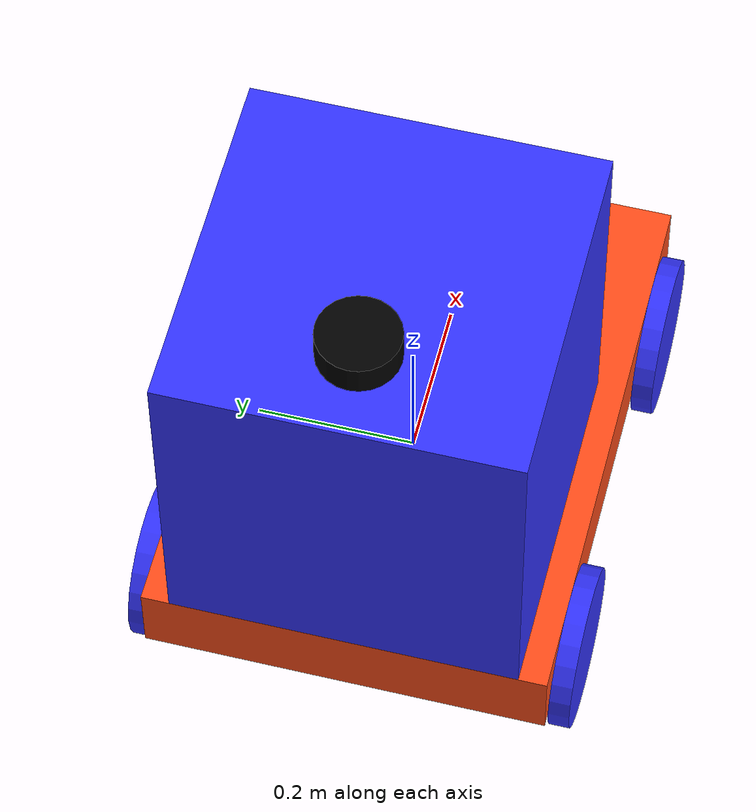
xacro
<?xml version="1.0"?>
<robot xmlns:xacro="http://www.ros.org/wiki/xacro"  name="robot">

    <xacro:include filename="robot_core.xacro" />

    <xacro:include filename="ros2_control.xacro"/>
    <xacro:include filename="lidar.xacro"/>
    <xacro:include filename="camera.xacro"/>

</robot>

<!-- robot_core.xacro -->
<robot xmlns:xacro="http://www.ros.org/wiki/xacro" >

    <xacro:include filename="inertial_macros.xacro"/>

    <!-- Chassis properties -->
    <xacro:property name="chassis_length" value="0.70"/>
    <xacro:property name="chassis_width" value="0.50"/>
    <xacro:property name="chassis_height" value="0.10"/>
    <xacro:property name="chassis_mass" value="1.0"/>

    <!-- Storage properties -->
    <xacro:property name="storage_length" value="0.43"/>
    <xacro:property name="storage_width" value="0.43"/>
    <xacro:property name="storage_height" value="0.47"/>
    <xacro:property name="storage_mass" value="1.0"/>

    <!-- Wheel properties -->
    <xacro:property name="wheel_radius" value="0.1"/>
    <xacro:property name="wheel_thickness" value="0.026"/>
    <xacro:property name="wheel_mass" value="0.05"/>
    <xacro:property name="wheel_offset_x" value="${chassis_length/3}"/>
    <xacro:property name="wheel_offset_y" value="${chassis_width/2+0.013}"/>
    <xacro:property name="wheel_offset_z" value="0"/>

    <material name="white">
        <color rgba="1 1 1 1" />
    </material>

    <material name="orange">
        <color rgba="1 0.3 0.1 1"/>
    </material>

    <material name="blue">
        <color rgba="0.2 0.2 1 1"/>
    </material>

    <material name="black">
        <color rgba="0 0 0 1"/>
    </material>

    <material name="red">
        <color rgba="1 0 0 1"/>
    </material>

    <!-- BASE LINK -->

    <link name="base_link">

    </link>

    <!-- BASE_FOOTPRINT LINK -->

    <joint name="base_footprint_joint" type="fixed">
        <parent link="base_link"/>
        <child link="base_footprint"/>
        <origin xyz="0 0 0" rpy="0 0 0"/>
    </joint>

    <link name="base_footprint">
    </link>

    <!-- CHASSIS LINK -->

    <joint name="chassis_joint" type="fixed">
        <parent link="base_link"/>
        <child link="chassis"/>
        <origin xyz="${-chassis_length/2} 0 0"/>
    </joint>

    <link name="chassis">
        <visual>
            <origin xyz="${chassis_length/2} 0 ${chassis_height/2}"/>
            <geometry>
                <box size="${chassis_length} ${chassis_width} ${chassis_height}"/>
            </geometry>
            <material name="orange"/>
        </visual>
        <collision>
            <origin xyz="${chassis_length/2} 0 ${chassis_height/2}"/>
            <geometry>
                <box size="${chassis_length} ${chassis_width} ${chassis_height}"/>
            </geometry>
        </collision>
        <xacro:inertial_box mass="0.5" x="${chassis_length}" y="${chassis_width}" z="${chassis_height}">
            <origin xyz="${chassis_length/2} 0 ${chassis_height/2}" rpy="0 0 0"/>
        </xacro:inertial_box>
    </link>

    <gazebo reference="chassis">
        <material>Gazebo/Orange</material>
    </gazebo>

    <!-- STORAGE BOX LINK -->
    <joint name="storage_box_joint" type="fixed">
        <parent link="chassis"/>
        <child link="storage_box"/>
        <origin xyz="0 0 0"/>
    </joint>

    <link name="storage_box">
        <visual>
            <origin xyz="${storage_length/2} 0 ${storage_height/2+chassis_height}"/>
            <geometry>
                <box size="${storage_length} ${storage_width} ${storage_height}"/>
            </geometry>
            <material name="blue"/>
        </visual>
        <collision>
            <origin xyz="${storage_length/2} 0 ${storage_height/2}"/>
            <geometry>
                <box size="${storage_length} ${storage_width} ${storage_height}"/>
            </geometry>
        </collision>
        <xacro:inertial_box mass="0.5" x="${storage_length}" y="${storage_width}" z="${storage_height}">
            <origin xyz="${storage_length/2} 0 ${storage_height/2}" rpy="0 0 0"/>
        </xacro:inertial_box>
    </link>

    <gazebo reference="storage_box">
        <material>Gazebo/Blue</material>
    </gazebo>

    <!-- LEFT REAR WHEEL LINK -->

    <joint name="left_rear_wheel_joint" type="continuous">
        <parent link="base_link"/>
        <child link="left_rear_wheel"/>
        <origin xyz="${-wheel_offset_x} ${wheel_offset_y} 0" rpy="-${pi/2} 0 0" />
        <axis xyz="0 0 1"/>
    </joint>

    <link name="left_rear_wheel">
        <visual>
            <geometry>
                <cylinder radius="${wheel_radius}" length="${wheel_thickness}"/>
            </geometry>
            <material name="blue"/>
        </visual>
        <collision>
            <geometry>
                <sphere radius="${wheel_radius}"/>
            </geometry>
        </collision>
        <xacro:inertial_cylinder mass="${wheel_mass}" length="${wheel_thickness}" radius="${wheel_radius}">
            <origin xyz="0 0 0" rpy="0 0 0"/>
        </xacro:inertial_cylinder>
    </link>

    <gazebo reference="left_rear_wheel">
        <material>Gazebo/Blue</material>
    </gazebo>

    <!-- LEFT FRONT WHEEL LINK -->
    <!-- make type="continuous" for real diff drive -->

    <joint name="left_front_wheel_joint" type="fixed">
        <parent link="base_link"/>
        <child link="left_front_wheel"/>
        <origin xyz="${wheel_offset_x} ${wheel_offset_y} 0" rpy="-${pi/2} 0 0" />
        <axis xyz="0 0 1"/>
    </joint>

    <link name="left_front_wheel">
        <visual>
            <geometry>
                <cylinder radius="${wheel_radius}" length="${wheel_thickness}"/>
            </geometry>
            <material name="blue"/>
        </visual>
        <collision>
            <geometry>
                <sphere radius="${wheel_radius}"/>
            </geometry>
        </collision>
        <xacro:inertial_cylinder mass="${wheel_mass}" length="${wheel_thickness}" radius="${wheel_radius}">
            <origin xyz="0 0 0" rpy="0 0 0"/>
        </xacro:inertial_cylinder>
    </link>

    <gazebo reference="left_front_wheel">
        <material>Gazebo/Blue</material>
        <mu1 value="0.001"/>
        <mu2 value="0.001"/>
    </gazebo>

    <!-- RIGHT REAR WHEEL LINK -->

    <joint name="right_rear_wheel_joint" type="continuous">
        <parent link="base_link"/>
        <child link="right_rear_wheel"/>
        <origin xyz="${-wheel_offset_x} ${-wheel_offset_y} 0" rpy="${pi/2} 0 0" />
        <axis xyz="0 0 -1"/>
    </joint>

    <link name="right_rear_wheel">
        <visual>
            <geometry>
                <cylinder radius="${wheel_radius}" length="${wheel_thickness}"/>
            </geometry>
            <material name="blue"/>
        </visual>
        <collision>
            <geometry>
                <sphere radius="${wheel_radius}"/>
            </geometry>
        </collision>
        <xacro:inertial_cylinder mass="${wheel_mass}" length="${wheel_thickness}" radius="${wheel_radius}">
            <origin xyz="0 0 0" rpy="0 0 0"/>
        </xacro:inertial_cylinder>
    </link>

    <gazebo reference="right_rear_wheel">
        <material>Gazebo/Blue</material>
    </gazebo>

    <!-- RIGHT FRONT WHEEL LINK -->
    <!-- make type="continuous" for real diff drive -->
    <joint name="right_front_wheel_joint" type="fixed">
        <parent link="base_link"/>
        <child link="right_front_wheel"/>
        <origin xyz="${wheel_offset_x} ${-wheel_offset_y} 0" rpy="${pi/2} 0 0" />
        <axis xyz="0 0 -1"/>
    </joint>

    <link name="right_front_wheel">
        <visual>
            <geometry>
                <cylinder radius="${wheel_radius}" length="${wheel_thickness}"/>
            </geometry>
            <material name="blue"/>
        </visual>
        <collision>
            <geometry>
                <sphere radius="${wheel_radius}"/>
            </geometry>
        </collision>
        <xacro:inertial_cylinder mass="${wheel_mass}" length="${wheel_thickness}" radius="${wheel_radius}">
            <origin xyz="0 0 0" rpy="0 0 0"/>
        </xacro:inertial_cylinder>
    </link>

    <gazebo reference="right_front_wheel">
        <material>Gazebo/Blue</material>
        <mu1 value="0.001"/>
        <mu2 value="0.001"/>
    </gazebo>
</robot>

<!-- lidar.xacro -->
<robot xmlns:xacro="http://www.ros.org/wiki/xacro" >

    <joint name="laser_joint" type="fixed">
        <parent link="chassis"/>
        <child link="laser_frame"/>
        <origin xyz="0.1 0 0.60" rpy="0 0 0"/>
    </joint>

    <link name="laser_frame">
        <visual>
            <geometry>
                <cylinder radius="0.05" length="0.04"/>
            </geometry>
            <material name="black"/>
        </visual>
        <visual>
            <origin xyz="0 0 -0.05"/>
            <geometry>
                <cylinder radius="0.01" length="0.1"/>
            </geometry>
            <material name="black"/>
        </visual>
        <collision>
            <geometry>
                <cylinder radius="0.05" length="0.04"/>
            </geometry>
        </collision>
        <xacro:inertial_cylinder mass="0.1" length="0.04" radius="0.05">
            <origin xyz="0 0 0" rpy="0 0 0"/>
        </xacro:inertial_cylinder>
    </link>

    <gazebo reference="laser_frame">
        <material>Gazebo/Black</material>

        <sensor name="laser" type="ray">
            <pose> 0 0 0 0 0 0 </pose>
            <visualize>false</visualize>
            <update_rate>10</update_rate>
            <ray>
                <scan>
                    <horizontal>
                        <samples>360</samples>
                        <min_angle>-3.14</min_angle>
                        <max_angle>3.14</max_angle>
                    </horizontal>
                </scan>
                <range>
                    <min>0.3</min>
                    <max>12</max>
                </range>
            </ray>
            <plugin name="laser_controller" filename="libgazebo_ros_ray_sensor.so">
                <ros>
                    <argument>~/out:=scan</argument>
                </ros>
                <output_type>sensor_msgs/LaserScan</output_type>
                <frame_name>laser_frame</frame_name>
            </plugin>
        </sensor>
    </gazebo>

</robot>

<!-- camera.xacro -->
<robot xmlns:xacro="http://www.ros.org/wiki/xacro" >

    <joint name="camera_joint" type="fixed">
        <parent link="chassis"/>
        <child link="camera_link"/>
        <origin xyz="0.70 0 0.1" rpy="0 0 0"/>
    </joint>

    <link name="camera_link">
        <visual>
            <geometry>
                <box size="0.010 0.06 0.03"/>
            </geometry>
            <material name="black"/>
        </visual>
    </link>

    <joint name="camera_optical_joint" type="fixed">
        <parent link="camera_link"/>
        <child link="camera_link_optical"/>
        <origin xyz="0 0 0" rpy="${-pi/2} 0 ${-pi/2}"/>
    </joint>

    <link name="camera_link_optical"></link>

    <gazebo reference="camera_link">
        <material>Gazebo/Black</material>

        <sensor name="camera" type="camera">
            <pose> 0 0 0 0 0 0 </pose>
            <visualize>true</visualize>
            <update_rate>10</update_rate>
            <camera>
                <horizontal_fov>1.089</horizontal_fov>
                <image>
                    <format>R8G8B8</format>
                    <width>640</width>
                    <height>480</height>
                </image>
                <clip>
                    <near>0.05</near>
                    <far>8.0</far>
                </clip>
            </camera>
            <plugin name="camera_controller" filename="libgazebo_ros_camera.so">
                <frame_name>camera_link_optical</frame_name>
            </plugin>
        </sensor>
    </gazebo>

</robot>
